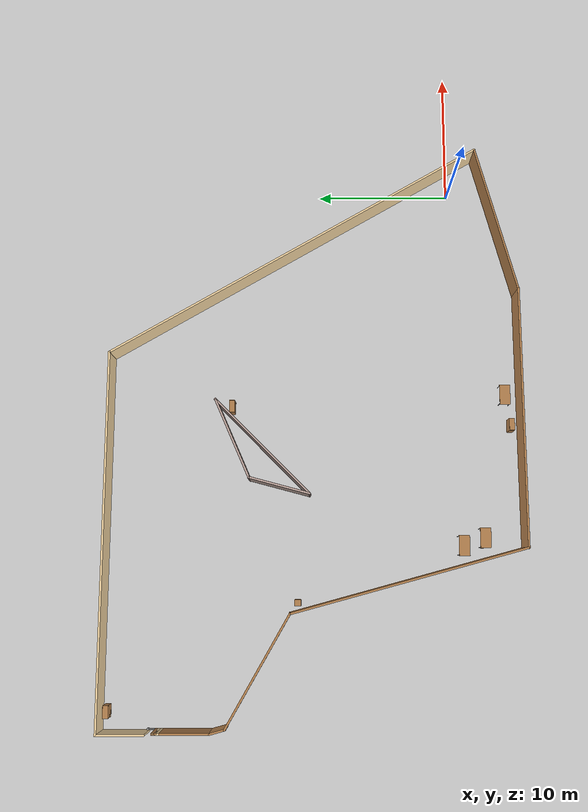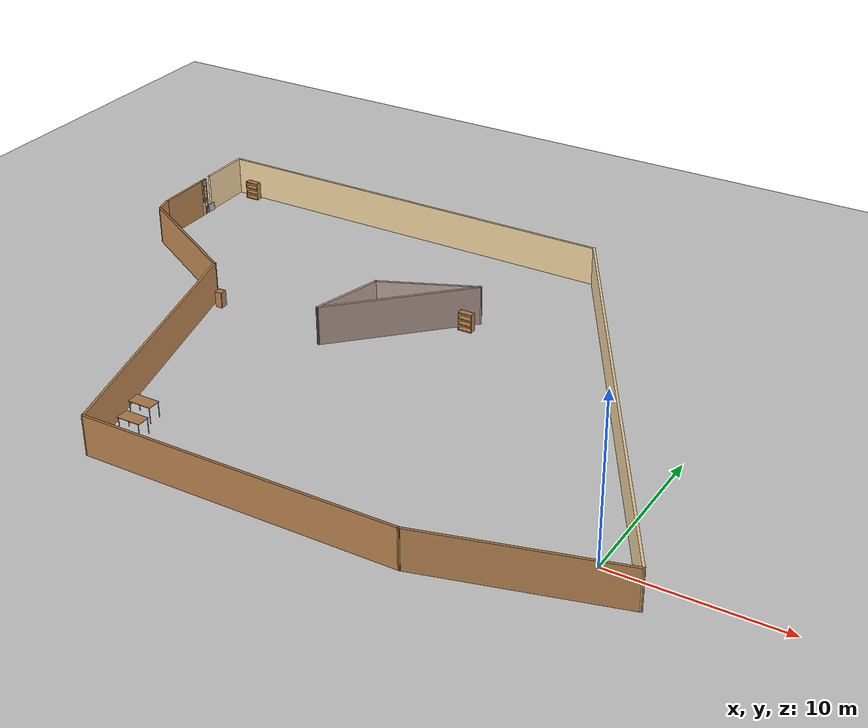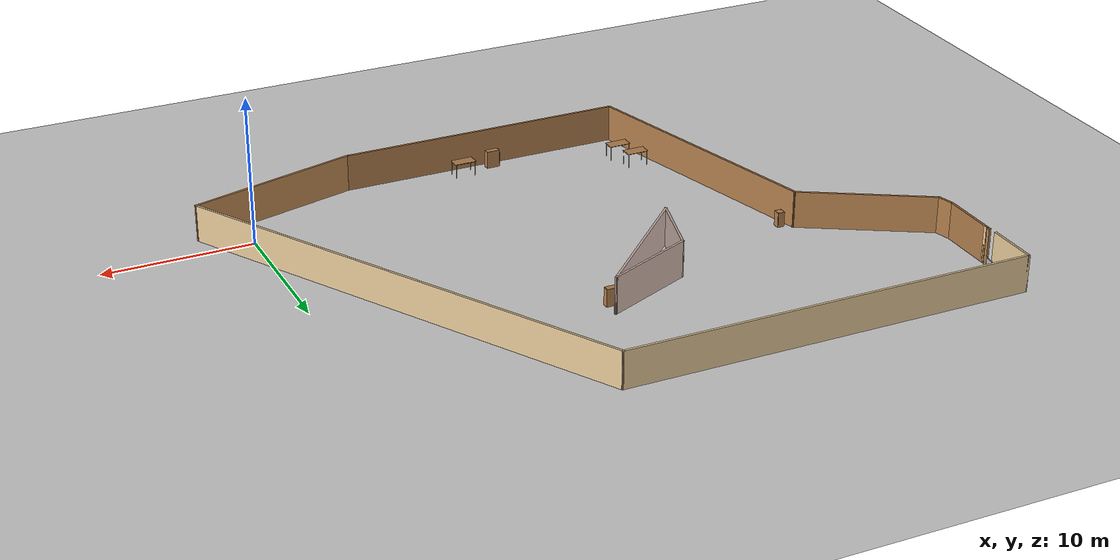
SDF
<sdf version="1.7">
 <world name="default">
  <light name="sun" type="directional">
   <pose>0 0 10 0 -0 0</pose>
   <diffuse>0.8 0.8 0.8 1</diffuse>
   <specular>0.2 0.2 0.2 1</specular>
   <attenuation>
    <range>1000</range>
    <constant>0.9</constant>
    <linear>0.01</linear>
    <quadratic>0.001</quadratic>
   </attenuation>
   <direction>-0.5 0.1 -0.9</direction>
   <spot><inner_angle>0</inner_angle><outer_angle>0</outer_angle><falloff>0</falloff></spot>
  </light>
  <model name="ground_plane">
   <static>1</static>
   <link name="link">
    <collision name="collision">
     <geometry><plane><normal>0 0 1</normal><size>100 100</size></plane></geometry>
     <surface>
      <contact><collide_bitmask>65535</collide_bitmask></contact>
      <friction><ode><mu>100</mu><mu2>50</mu2></ode></friction>
     </surface>
    </collision>
    <visual name="visual">
     <cast_shadows>0</cast_shadows>
     <geometry><plane><normal>0 0 1</normal><size>100 100</size></plane></geometry>
     <material>
      <script><uri>file://media/materials/scripts/gazebo.material</uri><name>Gazebo/Grey</name></script>
     </material>
    </visual>
   </link>
  </model>
  <physics type="ode">
   <real_time_update_rate>1000</real_time_update_rate>
   <max_step_size>0.001</max_step_size>
   <real_time_factor>1</real_time_factor>
   <ode>
    <solver>
     <type>quick</type>
     <iters>150</iters>
     <precon_iters>0</precon_iters>
     <sor>1.4</sor>
     <use_dynamic_moi_rescaling>1</use_dynamic_moi_rescaling>
    </solver>
    <constraints>
     <cfm>1e-05</cfm>
     <erp>0.2</erp>
     <contact_max_correcting_vel>2000</contact_max_correcting_vel>
     <contact_surface_layer>0.01</contact_surface_layer>
    </constraints>
   </ode>
  </physics>
  <scene><ambient>0.4 0.4 0.4 1</ambient><background>0.7 0.7 0.7 1</background><shadows>0</shadows></scene>
  <gravity>0 0 -9.8</gravity>
  <magnetic_field>6e-06 2.3e-05 -4.2e-05</magnetic_field>
  <atmosphere type="adiabatic"/>
  <spherical_coordinates>
   <surface_model>EARTH_WGS84</surface_model>
   <latitude_deg>0</latitude_deg>
   <longitude_deg>0</longitude_deg>
   <elevation>0</elevation>
   <heading_deg>0</heading_deg>
  </spherical_coordinates>
  <model name="pigeonHead-shaped-room">
   <pose>-18.609 10.4209 0 0 -0 0</pose>
   <link name="Wall_0">
    <collision name="Wall_0_Collision">
     <geometry><box><size>3.5 0.15 2.5</size></box></geometry>
     <pose>0 0 1.25 0 -0 0</pose>
    </collision>
    <visual name="Wall_0_Visual">
     <pose>0 0 1.25 0 -0 0</pose>
     <geometry><box><size>3.5 0.15 2.5</size></box></geometry>
     <material>
      <script><uri>file://media/materials/scripts/gazebo.material</uri><name>Gazebo/Grey</name></script>
      <ambient>0.921569 0.807843 0.615686 1</ambient>
     </material>
     <meta><layer>0</layer></meta>
    </visual>
    <pose>-21.7137 13.7206 0 0 -0 1.5708</pose>
   </link>
   <link name="Wall_1">
    <collision name="Wall_1_Collision">
     <geometry><box><size>27.5 0.15 2.5</size></box></geometry>
     <pose>0 0 1.25 0 -0 0</pose>
    </collision>
    <visual name="Wall_1_Visual">
     <pose>0 0 1.25 0 -0 0</pose>
     <geometry><box><size>27.5 0.15 2.5</size></box></geometry>
     <material>
      <script><uri>file://media/materials/scripts/gazebo.material</uri><name>Gazebo/Grey</name></script>
      <ambient>0.921569 0.807843 0.615686 1</ambient>
     </material>
     <meta><layer>0</layer></meta>
    </visual>
    <pose>-8.03873 15.3956 0 0 -0 0</pose>
   </link>
   <link name="Wall_10">
    <collision name="Wall_10_Collision">
     <geometry><box><size>0.25 0.15 2.5</size></box></geometry>
     <pose>0 0 1.25 0 -0 0</pose>
    </collision>
    <visual name="Wall_10_Visual">
     <pose>0 0 1.25 0 -0 0</pose>
     <geometry><box><size>0.25 0.15 2.5</size></box></geometry>
     <material>
      <script><uri>file://media/materials/scripts/gazebo.material</uri><name>Gazebo/Wood</name></script>
      <ambient>0.921569 0.807843 0.615686 1</ambient>
     </material>
     <meta><layer>0</layer></meta>
    </visual>
    <pose>-21.6539 11.1981 0 0 -0 1.5708</pose>
   </link>
   <link name="Wall_11">
    <collision name="Wall_11_Collision">
     <geometry><box><size>0.25 0.15 2.5</size></box></geometry>
     <pose>0 0 1.25 0 -0 0</pose>
    </collision>
    <visual name="Wall_11_Visual">
     <pose>0 0 1.25 0 -0 0</pose>
     <geometry><box><size>0.25 0.15 2.5</size></box></geometry>
     <material>
      <script><uri>file://media/materials/scripts/gazebo.material</uri><name>Gazebo/Grey</name></script>
      <ambient>0.921569 0.807843 0.615686 1</ambient>
     </material>
     <meta><layer>0</layer></meta>
    </visual>
    <pose>-21.6539 11.2981 0 0 -0 1.5708</pose>
   </link>
   <link name="Wall_12">
    <collision name="Wall_12_Collision">
     <geometry><box><size>0.25 0.15 2.5</size></box></geometry>
     <pose>0 0 1.25 0 -0 0</pose>
    </collision>
    <visual name="Wall_12_Visual">
     <pose>0 0 1.25 0 -0 0</pose>
     <geometry><box><size>0.25 0.15 2.5</size></box></geometry>
     <material>
      <script><uri>file://media/materials/scripts/gazebo.material</uri><name>Gazebo/Wood</name></script>
      <ambient>0.921569 0.807843 0.615686 1</ambient>
     </material>
     <meta><layer>0</layer></meta>
    </visual>
    <pose>-21.6539 11.3981 0 0 -0 1.5708</pose>
   </link>
   <link name="Wall_14">
    <collision name="Wall_14_Collision">
     <geometry><box><size>4.75 0.15 2.5</size></box></geometry>
     <pose>0 0 1.25 0 -0 0</pose>
    </collision>
    <visual name="Wall_14_Visual">
     <pose>0 0 1.25 0 -0 0</pose>
     <geometry><box><size>4.75 0.15 2.5</size></box></geometry>
     <material>
      <script><uri>file://media/materials/scripts/gazebo.material</uri><name>Gazebo/Grey</name></script>
      <ambient>0.760784 0.662745 0.627451 1</ambient>
     </material>
     <meta><layer>0</layer></meta>
    </visual>
    <pose>-4.33739 2.65717 0 0 -0 -1.8326</pose>
   </link>
   <link name="Wall_15">
    <collision name="Wall_15_Collision">
     <geometry><box><size>10 0.15 2.5</size></box></geometry>
     <pose>0 0 1.25 0 -0 0</pose>
    </collision>
    <visual name="Wall_15_Visual">
     <pose>0 0 1.25 0 -0 0</pose>
     <geometry><box><size>10 0.15 2.5</size></box></geometry>
     <material>
      <script><uri>file://media/materials/scripts/gazebo.material</uri><name>Gazebo/Grey</name></script>
      <ambient>0.760784 0.662745 0.627451 1</ambient>
     </material>
     <meta><layer>0</layer></meta>
    </visual>
    <pose>-1.45017 3.91805 0 0 -0 0.785398</pose>
   </link>
   <link name="Wall_16">
    <collision name="Wall_16_Collision">
     <geometry><box><size>6.45105 0.15 2.5</size></box></geometry>
     <pose>0 0 1.25 0 -0 0</pose>
    </collision>
    <visual name="Wall_16_Visual">
     <pose>0 0 1.25 0 -0 0</pose>
     <geometry><box><size>6.45105 0.15 2.5</size></box></geometry>
     <material>
      <script><uri>file://media/materials/scripts/gazebo.material</uri><name>Gazebo/Grey</name></script>
      <ambient>0.760784 0.662745 0.627451 1</ambient>
     </material>
     <meta><layer>0</layer></meta>
    </visual>
    <pose>-0.854887 6.13968 0 0 -0 -2.72985</pose>
   </link>
   <link name="Wall_2">
    <collision name="Wall_2_Collision">
     <geometry><box><size>32.25 0.15 2.5</size></box></geometry>
     <pose>0 0 1.25 0 -0 0</pose>
    </collision>
    <visual name="Wall_2_Visual">
     <pose>0 0 1.25 0 -0 0</pose>
     <geometry><box><size>32.25 0.15 2.5</size></box></geometry>
     <material>
      <script><uri>file://media/materials/scripts/gazebo.material</uri><name>Gazebo/Grey</name></script>
      <ambient>0.921569 0.807843 0.615686 1</ambient>
     </material>
     <meta><layer>0</layer></meta>
    </visual>
    <pose>13.6613 1.49585 0 0 -0 -1.0472</pose>
   </link>
   <link name="Wall_3">
    <collision name="Wall_3_Collision">
     <geometry><box><size>11.75 0.15 2.5</size></box></geometry>
     <pose>0 0 1.25 0 -0 0</pose>
    </collision>
    <visual name="Wall_3_Visual">
     <pose>0 0 1.25 0 -0 0</pose>
     <geometry><box><size>11.75 0.15 2.5</size></box></geometry>
     <material>
      <script><uri>file://media/materials/scripts/gazebo.material</uri><name>Gazebo/Wood</name></script>
      <ambient>0.921569 0.807843 0.615686 1</ambient>
     </material>
     <meta><layer>0</layer></meta>
    </visual>
    <pose>16.0839 -13.905 0 0 -0 -2.87979</pose>
   </link>
   <link name="Wall_4">
    <collision name="Wall_4_Collision">
     <geometry><box><size>19.5 0.15 2.5</size></box></geometry>
     <pose>0 0 1.25 0 -0 0</pose>
    </collision>
    <visual name="Wall_4_Visual">
     <pose>0 0 1.25 0 -0 0</pose>
     <geometry><box><size>19.5 0.15 2.5</size></box></geometry>
     <material>
      <script><uri>file://media/materials/scripts/gazebo.material</uri><name>Gazebo/Wood</name></script>
      <ambient>0.921569 0.807843 0.615686 1</ambient>
     </material>
     <meta><layer>0</layer></meta>
    </visual>
    <pose>0.806534 -15.4062 0 0 -0 3.14159</pose>
   </link>
   <link name="Wall_5">
    <collision name="Wall_5_Collision">
     <geometry><box><size>18 0.15 2.5</size></box></geometry>
     <pose>0 0 1.25 0 -0 0</pose>
    </collision>
    <visual name="Wall_5_Visual">
     <pose>0 0 1.25 0 -0 0</pose>
     <geometry><box><size>18 0.15 2.5</size></box></geometry>
     <material>
      <script><uri>file://media/materials/scripts/gazebo.material</uri><name>Gazebo/Wood</name></script>
      <ambient>0.921569 0.807843 0.615686 1</ambient>
     </material>
     <meta><layer>0</layer></meta>
    </visual>
    <pose>-11.1784 -6.78527 0 0 -0 1.8326</pose>
   </link>
   <link name="Wall_6">
    <collision name="Wall_6_Collision">
     <geometry><box><size>9.25 0.15 2.5</size></box></geometry>
     <pose>0 0 1.25 0 -0 0</pose>
    </collision>
    <visual name="Wall_6_Visual">
     <pose>0 0 1.25 0 -0 0</pose>
     <geometry><box><size>9.25 0.15 2.5</size></box></geometry>
     <material>
      <script><uri>file://media/materials/scripts/gazebo.material</uri><name>Gazebo/Wood</name></script>
      <ambient>0.921569 0.807843 0.615686 1</ambient>
     </material>
     <meta><layer>0</layer></meta>
    </visual>
    <pose>-17.4288 4.11062 0 0 -0 2.61799</pose>
   </link>
   <link name="Wall_7">
    <collision name="Wall_7_Collision">
     <geometry><box><size>1.25 0.15 2.5</size></box></geometry>
     <pose>0 0 1.25 0 -0 0</pose>
    </collision>
    <visual name="Wall_7_Visual">
     <pose>0 0 1.25 0 -0 0</pose>
     <geometry><box><size>1.25 0.15 2.5</size></box></geometry>
     <material>
      <script><uri>file://media/materials/scripts/gazebo.material</uri><name>Gazebo/Wood</name></script>
      <ambient>0.921569 0.807843 0.615686 1</ambient>
     </material>
     <meta><layer>0</layer></meta>
    </visual>
    <pose>-21.5116 6.91688 0 0 -0 1.8326</pose>
   </link>
   <link name="Wall_8">
    <collision name="Wall_8_Collision">
     <geometry><box><size>3.75 0.15 2.5</size></box></geometry>
     <pose>0 0 1.25 0 -0 0</pose>
    </collision>
    <visual name="Wall_8_Visual">
     <pose>0 0 1.25 0 -0 0</pose>
     <geometry><box><size>3.75 0.15 2.5</size></box></geometry>
     <material>
      <script><uri>file://media/materials/scripts/gazebo.material</uri><name>Gazebo/Wood</name></script>
      <ambient>0.921569 0.807843 0.615686 1</ambient>
     </material>
     <meta><layer>0</layer></meta>
    </visual>
    <pose>-21.6539 9.24814 0 0 -0 1.5708</pose>
   </link>
   <link name="Wall_9">
    <collision name="Wall_9_Collision">
     <geometry><box><size>0.25 0.15 2.5</size></box></geometry>
     <pose>0 0 1.25 0 -0 0</pose>
    </collision>
    <visual name="Wall_9_Visual">
     <pose>0 0 1.25 0 -0 0</pose>
     <geometry><box><size>0.25 0.15 2.5</size></box></geometry>
     <material>
      <script><uri>file://media/materials/scripts/gazebo.material</uri><name>Gazebo/Grey</name></script>
      <ambient>0.921569 0.807843 0.615686 1</ambient>
     </material>
     <meta><layer>0</layer></meta>
    </visual>
    <pose>-21.6539 11.0981 0 0 -0 1.5708</pose>
   </link>
   <static>1</static>
  </model>
  <model name="door-model">
   <link name="door">
    <inertial>
     <mass>20</mass>
     <inertia>
      <ixx>4.53808</ixx>
      <ixy>0</ixy>
      <ixz>0</ixz>
      <iyy>4.54003</iyy>
      <iyz>0</iyz>
      <izz>0.0512722</izz>
     </inertia>
    </inertial>
    <gravity>0</gravity>
    <visual name="visual">
     <geometry><mesh><uri>model://door-model/./Door.dae</uri><scale>0.001 0.001 0.001</scale></mesh></geometry>
    </visual>
    <collision name="collision">
     <geometry><mesh><uri>model://door-model/./Door.dae</uri><scale>0.001 0.001 0.001</scale></mesh></geometry>
     <surface>
      <friction>
       <ode><mu>1</mu><mu2>1</mu2><fdir1>0 0 0</fdir1><slip1>0</slip1><slip2>0</slip2></ode>
       <torsional>
        <coefficient>1</coefficient>
        <patch_radius>0</patch_radius>
        <surface_radius>0</surface_radius>
        <use_patch_radius>1</use_patch_radius>
        <ode><slip>0</slip></ode>
       </torsional>
      </friction>
      <bounce><restitution_coefficient>0</restitution_coefficient><threshold>1e+06</threshold></bounce>
      <contact>
       <collide_without_contact>0</collide_without_contact>
       <collide_without_contact_bitmask>1</collide_without_contact_bitmask>
       <collide_bitmask>1</collide_bitmask>
       <ode>
        <soft_cfm>0</soft_cfm>
        <soft_erp>0.2</soft_erp>
        <kp>1e+13</kp>
        <kd>1</kd>
        <max_vel>0.01</max_vel>
        <min_depth>0</min_depth>
       </ode>
       <bullet>
        <split_impulse>1</split_impulse>
        <split_impulse_penetration_threshold>-0.01</split_impulse_penetration_threshold>
        <soft_cfm>0</soft_cfm>
        <soft_erp>0.2</soft_erp>
        <kp>1e+13</kp>
        <kd>1</kd>
       </bullet>
      </contact>
     </surface>
    </collision>
   </link>
   <link name="pole">
    <inertial>
     <mass>100</mass>
     <inertia>
      <ixx>0.001</ixx>
      <ixy>0.001</ixy>
      <ixz>0.001</ixz>
      <iyy>0.001</iyy>
      <iyz>0.001</iyz>
      <izz>0.001</izz>
     </inertia>
    </inertial>
    <pose>-0.02632 0 0.308096 0 -0 0</pose>
    <gravity>0</gravity>
    <kinematic>1</kinematic>
    <visual name="visual">
     <geometry><box><size>0.048276 0.0462 0.625074</size></box></geometry>
     <material>
      <lighting>1</lighting>
      <script><uri>file://media/materials/scripts/gazebo.material</uri><name>Gazebo/White</name></script>
      <ambient>1 1 1 1</ambient>
     </material>
    </visual>
    <collision name="collision">
     <geometry><box><size>0.048 0.046201 0.625074</size></box></geometry>
     <surface>
      <friction>
       <ode><mu>1</mu><mu2>1</mu2><fdir1>0 0 0</fdir1><slip1>0</slip1><slip2>0</slip2></ode>
       <torsional>
        <coefficient>1</coefficient>
        <patch_radius>0</patch_radius>
        <surface_radius>0</surface_radius>
        <use_patch_radius>1</use_patch_radius>
        <ode><slip>0</slip></ode>
       </torsional>
      </friction>
      <bounce><restitution_coefficient>0</restitution_coefficient><threshold>1e+06</threshold></bounce>
      <contact>
       <collide_without_contact>0</collide_without_contact>
       <collide_without_contact_bitmask>1</collide_without_contact_bitmask>
       <collide_bitmask>1</collide_bitmask>
       <ode>
        <soft_cfm>0</soft_cfm>
        <soft_erp>0.2</soft_erp>
        <kp>1e+13</kp>
        <kd>1</kd>
        <max_vel>0.01</max_vel>
        <min_depth>0</min_depth>
       </ode>
       <bullet>
        <split_impulse>1</split_impulse>
        <split_impulse_penetration_threshold>-0.01</split_impulse_penetration_threshold>
        <soft_cfm>0</soft_cfm>
        <soft_erp>0.2</soft_erp>
        <kp>1e+13</kp>
        <kd>1</kd>
       </bullet>
      </contact>
     </surface>
    </collision>
   </link>
   <joint name="hinge" type="revolute">
    <parent>pole</parent>
    <child>door</child>
    <pose>0 0 0.3 0 -0 0</pose>
    <axis>
     <xyz>0 0 1</xyz>
     <limit><lower>-1.74533</lower><upper>1.74533</upper><effort>3900</effort><velocity>0.62</velocity></limit>
     <dynamics>
      <spring_reference>0</spring_reference>
      <spring_stiffness>0</spring_stiffness>
      <damping>0.1</damping>
      <friction>0.1</friction>
     </dynamics>
    </axis>
    <physics>
     <ode><limit><cfm>0</cfm><erp>0.2</erp></limit><suspension><cfm>0</cfm><erp>0.2</erp></suspension></ode>
    </physics>
   </joint>
   <static>0</static>
   <pose>-40.1991 21.9984 -0 0 -0 1.51619</pose>
  </model>
  <model name="bookshelf">
   <static>1</static>
   <link name="link">
    <inertial><mass>1</mass></inertial>
    <collision name="back">
     <pose>0 0.005 0.6 0 -0 0</pose>
     <geometry><box><size>0.9 0.01 1.2</size></box></geometry>
    </collision>
    <visual name="visual1">
     <pose>0 0.005 0.6 0 -0 0</pose>
     <geometry><box><size>0.9 0.01 1.2</size></box></geometry>
     <material>
      <script><uri>file://media/materials/scripts/gazebo.material</uri><name>Gazebo/Wood</name></script>
     </material>
    </visual>
    <collision name="left_side">
     <pose>0.45 -0.195 0.6 0 -0 0</pose>
     <geometry><box><size>0.02 0.4 1.2</size></box></geometry>
    </collision>
    <visual name="visual2">
     <pose>0.45 -0.195 0.6 0 -0 0</pose>
     <geometry><box><size>0.02 0.4 1.2</size></box></geometry>
     <material>
      <script><uri>file://media/materials/scripts/gazebo.material</uri><name>Gazebo/Wood</name></script>
     </material>
    </visual>
    <collision name="right_side">
     <pose>-0.45 -0.195 0.6 0 -0 0</pose>
     <geometry><box><size>0.02 0.4 1.2</size></box></geometry>
    </collision>
    <visual name="visual3">
     <pose>-0.45 -0.195 0.6 0 -0 0</pose>
     <geometry><box><size>0.02 0.4 1.2</size></box></geometry>
     <material>
      <script><uri>file://media/materials/scripts/gazebo.material</uri><name>Gazebo/Wood</name></script>
     </material>
    </visual>
    <collision name="bottom">
     <pose>0 -0.195 0.03 0 -0 0</pose>
     <geometry><box><size>0.88 0.4 0.06</size></box></geometry>
    </collision>
    <visual name="visual4">
     <pose>0 -0.195 0.03 0 -0 0</pose>
     <geometry><box><size>0.88 0.4 0.06</size></box></geometry>
     <material>
      <script><uri>file://media/materials/scripts/gazebo.material</uri><name>Gazebo/Wood</name></script>
     </material>
    </visual>
    <collision name="top">
     <pose>0 -0.195 1.19 0 -0 0</pose>
     <geometry><box><size>0.88 0.4 0.02</size></box></geometry>
    </collision>
    <visual name="visual5">
     <pose>0 -0.195 1.19 0 -0 0</pose>
     <geometry><box><size>0.88 0.4 0.02</size></box></geometry>
     <material>
      <script><uri>file://media/materials/scripts/gazebo.material</uri><name>Gazebo/Wood</name></script>
     </material>
    </visual>
    <collision name="low_shelf">
     <pose>0 -0.195 0.43 0 -0 0</pose>
     <geometry><box><size>0.88 0.4 0.02</size></box></geometry>
    </collision>
    <visual name="visual6">
     <pose>0 -0.195 0.43 0 -0 0</pose>
     <geometry><box><size>0.88 0.4 0.02</size></box></geometry>
     <material>
      <script><uri>file://media/materials/scripts/gazebo.material</uri><name>Gazebo/Wood</name></script>
     </material>
    </visual>
    <collision name="high_shelf">
     <pose>0 -0.195 0.8 0 -0 0</pose>
     <geometry><box><size>0.88 0.4 0.02</size></box></geometry>
    </collision>
    <visual name="visual7">
     <pose>0 -0.195 0.8 0 -0 0</pose>
     <geometry><box><size>0.88 0.4 0.02</size></box></geometry>
     <material>
      <script><uri>file://media/materials/scripts/gazebo.material</uri><name>Gazebo/Wood</name></script>
     </material>
    </visual>
   </link>
   <pose>-38.9189 25.6071 0 0 -0 0</pose>
  </model>
  <model name="table">
   <static>1</static>
   <link name="link">
    <collision name="surface">
     <pose>0 0 1 0 -0 0</pose>
     <geometry><box><size>1.5 0.8 0.03</size></box></geometry>
     <surface><friction><ode><mu>0.6</mu><mu2>0.6</mu2></ode></friction></surface>
    </collision>
    <visual name="visual1">
     <pose>0 0 1 0 -0 0</pose>
     <geometry><box><size>1.5 0.8 0.03</size></box></geometry>
     <material>
      <script><uri>file://media/materials/scripts/gazebo.material</uri><name>Gazebo/Wood</name></script>
     </material>
    </visual>
    <collision name="front_left_leg">
     <pose>0.68 0.38 0.5 0 -0 0</pose>
     <geometry><cylinder><radius>0.02</radius><length>1</length></cylinder></geometry>
    </collision>
    <visual name="front_left_leg">
     <pose>0.68 0.38 0.5 0 -0 0</pose>
     <geometry><cylinder><radius>0.02</radius><length>1</length></cylinder></geometry>
     <material>
      <script><uri>file://media/materials/scripts/gazebo.material</uri><name>Gazebo/Grey</name></script>
     </material>
    </visual>
    <collision name="front_right_leg">
     <pose>0.68 -0.38 0.5 0 -0 0</pose>
     <geometry><cylinder><radius>0.02</radius><length>1</length></cylinder></geometry>
    </collision>
    <visual name="front_right_leg">
     <pose>0.68 -0.38 0.5 0 -0 0</pose>
     <geometry><cylinder><radius>0.02</radius><length>1</length></cylinder></geometry>
     <material>
      <script><uri>file://media/materials/scripts/gazebo.material</uri><name>Gazebo/Grey</name></script>
     </material>
    </visual>
    <collision name="back_right_leg">
     <pose>-0.68 -0.38 0.5 0 -0 0</pose>
     <geometry><cylinder><radius>0.02</radius><length>1</length></cylinder></geometry>
    </collision>
    <visual name="back_right_leg">
     <pose>-0.68 -0.38 0.5 0 -0 0</pose>
     <geometry><cylinder><radius>0.02</radius><length>1</length></cylinder></geometry>
     <material>
      <script><uri>file://media/materials/scripts/gazebo.material</uri><name>Gazebo/Grey</name></script>
     </material>
    </visual>
    <collision name="back_left_leg">
     <pose>-0.68 0.38 0.5 0 -0 0</pose>
     <geometry><cylinder><radius>0.02</radius><length>1</length></cylinder></geometry>
    </collision>
    <visual name="back_left_leg">
     <pose>-0.68 0.38 0.5 0 -0 0</pose>
     <geometry><cylinder><radius>0.02</radius><length>1</length></cylinder></geometry>
     <material>
      <script><uri>file://media/materials/scripts/gazebo.material</uri><name>Gazebo/Grey</name></script>
     </material>
    </visual>
   </link>
   <pose>-26.7162 -2.12443 0 0 -0 0</pose>
  </model>
  <model name="table_0">
   <static>1</static>
   <link name="link">
    <collision name="surface">
     <pose>0 0 1 0 -0 0</pose>
     <geometry><box><size>1.5 0.8 0.03</size></box></geometry>
     <surface><friction><ode><mu>0.6</mu><mu2>0.6</mu2></ode></friction></surface>
    </collision>
    <visual name="visual1">
     <pose>0 0 1 0 -0 0</pose>
     <geometry><box><size>1.5 0.8 0.03</size></box></geometry>
     <material>
      <script><uri>file://media/materials/scripts/gazebo.material</uri><name>Gazebo/Wood</name></script>
     </material>
    </visual>
    <collision name="front_left_leg">
     <pose>0.68 0.38 0.5 0 -0 0</pose>
     <geometry><cylinder><radius>0.02</radius><length>1</length></cylinder></geometry>
    </collision>
    <visual name="front_left_leg">
     <pose>0.68 0.38 0.5 0 -0 0</pose>
     <geometry><cylinder><radius>0.02</radius><length>1</length></cylinder></geometry>
     <material>
      <script><uri>file://media/materials/scripts/gazebo.material</uri><name>Gazebo/Grey</name></script>
     </material>
    </visual>
    <collision name="front_right_leg">
     <pose>0.68 -0.38 0.5 0 -0 0</pose>
     <geometry><cylinder><radius>0.02</radius><length>1</length></cylinder></geometry>
    </collision>
    <visual name="front_right_leg">
     <pose>0.68 -0.38 0.5 0 -0 0</pose>
     <geometry><cylinder><radius>0.02</radius><length>1</length></cylinder></geometry>
     <material>
      <script><uri>file://media/materials/scripts/gazebo.material</uri><name>Gazebo/Grey</name></script>
     </material>
    </visual>
    <collision name="back_right_leg">
     <pose>-0.68 -0.38 0.5 0 -0 0</pose>
     <geometry><cylinder><radius>0.02</radius><length>1</length></cylinder></geometry>
    </collision>
    <visual name="back_right_leg">
     <pose>-0.68 -0.38 0.5 0 -0 0</pose>
     <geometry><cylinder><radius>0.02</radius><length>1</length></cylinder></geometry>
     <material>
      <script><uri>file://media/materials/scripts/gazebo.material</uri><name>Gazebo/Grey</name></script>
     </material>
    </visual>
    <collision name="back_left_leg">
     <pose>-0.68 0.38 0.5 0 -0 0</pose>
     <geometry><cylinder><radius>0.02</radius><length>1</length></cylinder></geometry>
    </collision>
    <visual name="back_left_leg">
     <pose>-0.68 0.38 0.5 0 -0 0</pose>
     <geometry><cylinder><radius>0.02</radius><length>1</length></cylinder></geometry>
     <material>
      <script><uri>file://media/materials/scripts/gazebo.material</uri><name>Gazebo/Grey</name></script>
     </material>
    </visual>
   </link>
   <pose>-27.2683 -0.541935 0 0 -0 0</pose>
  </model>
  <model name="bookshelf_0">
   <static>1</static>
   <link name="link">
    <inertial><mass>1</mass></inertial>
    <collision name="back">
     <pose>0 0.005 0.6 0 -0 0</pose>
     <geometry><box><size>0.9 0.01 1.2</size></box></geometry>
    </collision>
    <visual name="visual1">
     <pose>0 0.005 0.6 0 -0 0</pose>
     <geometry><box><size>0.9 0.01 1.2</size></box></geometry>
     <material>
      <script><uri>file://media/materials/scripts/gazebo.material</uri><name>Gazebo/Wood</name></script>
     </material>
    </visual>
    <collision name="left_side">
     <pose>0.45 -0.195 0.6 0 -0 0</pose>
     <geometry><box><size>0.02 0.4 1.2</size></box></geometry>
    </collision>
    <visual name="visual2">
     <pose>0.45 -0.195 0.6 0 -0 0</pose>
     <geometry><box><size>0.02 0.4 1.2</size></box></geometry>
     <material>
      <script><uri>file://media/materials/scripts/gazebo.material</uri><name>Gazebo/Wood</name></script>
     </material>
    </visual>
    <collision name="right_side">
     <pose>-0.45 -0.195 0.6 0 -0 0</pose>
     <geometry><box><size>0.02 0.4 1.2</size></box></geometry>
    </collision>
    <visual name="visual3">
     <pose>-0.45 -0.195 0.6 0 -0 0</pose>
     <geometry><box><size>0.02 0.4 1.2</size></box></geometry>
     <material>
      <script><uri>file://media/materials/scripts/gazebo.material</uri><name>Gazebo/Wood</name></script>
     </material>
    </visual>
    <collision name="bottom">
     <pose>0 -0.195 0.03 0 -0 0</pose>
     <geometry><box><size>0.88 0.4 0.06</size></box></geometry>
    </collision>
    <visual name="visual4">
     <pose>0 -0.195 0.03 0 -0 0</pose>
     <geometry><box><size>0.88 0.4 0.06</size></box></geometry>
     <material>
      <script><uri>file://media/materials/scripts/gazebo.material</uri><name>Gazebo/Wood</name></script>
     </material>
    </visual>
    <collision name="top">
     <pose>0 -0.195 1.19 0 -0 0</pose>
     <geometry><box><size>0.88 0.4 0.02</size></box></geometry>
    </collision>
    <visual name="visual5">
     <pose>0 -0.195 1.19 0 -0 0</pose>
     <geometry><box><size>0.88 0.4 0.02</size></box></geometry>
     <material>
      <script><uri>file://media/materials/scripts/gazebo.material</uri><name>Gazebo/Wood</name></script>
     </material>
    </visual>
    <collision name="low_shelf">
     <pose>0 -0.195 0.43 0 -0 0</pose>
     <geometry><box><size>0.88 0.4 0.02</size></box></geometry>
    </collision>
    <visual name="visual6">
     <pose>0 -0.195 0.43 0 -0 0</pose>
     <geometry><box><size>0.88 0.4 0.02</size></box></geometry>
     <material>
      <script><uri>file://media/materials/scripts/gazebo.material</uri><name>Gazebo/Wood</name></script>
     </material>
    </visual>
    <collision name="high_shelf">
     <pose>0 -0.195 0.8 0 -0 0</pose>
     <geometry><box><size>0.88 0.4 0.02</size></box></geometry>
    </collision>
    <visual name="visual7">
     <pose>0 -0.195 0.8 0 -0 0</pose>
     <geometry><box><size>0.88 0.4 0.02</size></box></geometry>
     <material>
      <script><uri>file://media/materials/scripts/gazebo.material</uri><name>Gazebo/Wood</name></script>
     </material>
    </visual>
   </link>
   <pose>-16.8872 16.8711 0 0 -0 0</pose>
  </model>
  <model name="cabinet">
   <static>1</static>
   <link name="cabinet_bottom_plate">
    <inertial>
     <pose>0 0 -1 0 -0 0</pose>
     <inertia><ixx>2.05</ixx><ixy>0</ixy><ixz>0</ixz><iyy>2.05</iyy><iyz>0</iyz><izz>2.05</izz></inertia>
     <mass>25</mass>
    </inertial>
    <collision name="cabinet_bottom_plate_geom">
     <pose>0 0 0.01 0 -0 0</pose>
     <geometry><box><size>0.45 0.45 0.02</size></box></geometry>
    </collision>
    <visual name="cabinet_bottom_plate_geom_visual">
     <pose>0 0 0.01 0 -0 0</pose>
     <geometry><box><size>0.45 0.45 0.02</size></box></geometry>
     <material>
      <script><uri>file://media/materials/scripts/gazebo.material</uri><name>Gazebo/Wood</name></script>
     </material>
    </visual>
    <collision name="cabinet_bottom_plate_geom_cabinet_back_plate">
     <pose>0.235 0 0.51 0 -0 0</pose>
     <geometry><box><size>0.02 0.45 1.02</size></box></geometry>
    </collision>
    <visual name="cabinet_bottom_plate_geom_cabinet_back_plate_visual">
     <pose>0.235 0 0.51 0 -0 0</pose>
     <geometry><box><size>0.02 0.45 1.02</size></box></geometry>
     <material>
      <script><uri>file://media/materials/scripts/gazebo.material</uri><name>Gazebo/Wood</name></script>
     </material>
    </visual>
    <collision name="cabinet_bottom_plate_geom_cabinet_left_plate">
     <pose>0 0.235 0.51 0 -0 0</pose>
     <geometry><box><size>0.45 0.02 1.02</size></box></geometry>
    </collision>
    <visual name="cabinet_bottom_plate_geom_cabinet_left_plate_visual">
     <pose>0 0.235 0.51 0 -0 0</pose>
     <geometry><box><size>0.45 0.02 1.02</size></box></geometry>
     <material>
      <script><uri>file://media/materials/scripts/gazebo.material</uri><name>Gazebo/Wood</name></script>
     </material>
    </visual>
    <collision name="cabinet_bottom_plate_geom_cabinet_middle_plate">
     <pose>0 0 0.51 0 -0 0</pose>
     <geometry><box><size>0.45 0.45 0.02</size></box></geometry>
    </collision>
    <visual name="cabinet_bottom_plate_geom_cabinet_middle_plate_visual">
     <pose>0 0 0.51 0 -0 0</pose>
     <geometry><box><size>0.45 0.45 0.02</size></box></geometry>
     <material>
      <script><uri>file://media/materials/scripts/gazebo.material</uri><name>Gazebo/Wood</name></script>
     </material>
    </visual>
    <collision name="cabinet_bottom_plate_geom_cabinet_right_plate">
     <pose>0 -0.235 0.51 0 -0 0</pose>
     <geometry><box><size>0.45 0.02 1.02</size></box></geometry>
    </collision>
    <visual name="cabinet_bottom_plate_geom_cabinet_right_plate_visual">
     <pose>0 -0.235 0.51 0 -0 0</pose>
     <geometry><box><size>0.45 0.02 1.02</size></box></geometry>
     <material>
      <script><uri>file://media/materials/scripts/gazebo.material</uri><name>Gazebo/Wood</name></script>
     </material>
    </visual>
    <collision name="cabinet_bottom_plate_geom_cabinet_top_plate">
     <pose>0 0 1.01 0 -0 0</pose>
     <geometry><box><size>0.45 0.45 0.02</size></box></geometry>
    </collision>
    <visual name="cabinet_bottom_plate_geom_cabinet_top_plate_visual">
     <pose>0 0 1.01 0 -0 0</pose>
     <geometry><box><size>0.45 0.45 0.02</size></box></geometry>
     <material>
      <script><uri>file://media/materials/scripts/gazebo.material</uri><name>Gazebo/Wood</name></script>
     </material>
    </visual>
   </link>
   <pose>-31.3778 11.7192 0 0 -0 0</pose>
  </model>
  <model name="table_1">
   <static>1</static>
   <link name="link">
    <collision name="surface">
     <pose>0 0 1 0 -0 0</pose>
     <geometry><box><size>1.5 0.8 0.03</size></box></geometry>
     <surface><friction><ode><mu>0.6</mu><mu2>0.6</mu2></ode></friction></surface>
    </collision>
    <visual name="visual1">
     <pose>0 0 1 0 -0 0</pose>
     <geometry><box><size>1.5 0.8 0.03</size></box></geometry>
     <material>
      <script><uri>file://media/materials/scripts/gazebo.material</uri><name>Gazebo/Wood</name></script>
     </material>
    </visual>
    <collision name="front_left_leg">
     <pose>0.68 0.38 0.5 0 -0 0</pose>
     <geometry><cylinder><radius>0.02</radius><length>1</length></cylinder></geometry>
    </collision>
    <visual name="front_left_leg">
     <pose>0.68 0.38 0.5 0 -0 0</pose>
     <geometry><cylinder><radius>0.02</radius><length>1</length></cylinder></geometry>
     <material>
      <script><uri>file://media/materials/scripts/gazebo.material</uri><name>Gazebo/Grey</name></script>
     </material>
    </visual>
    <collision name="front_right_leg">
     <pose>0.68 -0.38 0.5 0 -0 0</pose>
     <geometry><cylinder><radius>0.02</radius><length>1</length></cylinder></geometry>
    </collision>
    <visual name="front_right_leg">
     <pose>0.68 -0.38 0.5 0 -0 0</pose>
     <geometry><cylinder><radius>0.02</radius><length>1</length></cylinder></geometry>
     <material>
      <script><uri>file://media/materials/scripts/gazebo.material</uri><name>Gazebo/Grey</name></script>
     </material>
    </visual>
    <collision name="back_right_leg">
     <pose>-0.68 -0.38 0.5 0 -0 0</pose>
     <geometry><cylinder><radius>0.02</radius><length>1</length></cylinder></geometry>
    </collision>
    <visual name="back_right_leg">
     <pose>-0.68 -0.38 0.5 0 -0 0</pose>
     <geometry><cylinder><radius>0.02</radius><length>1</length></cylinder></geometry>
     <material>
      <script><uri>file://media/materials/scripts/gazebo.material</uri><name>Gazebo/Grey</name></script>
     </material>
    </visual>
    <collision name="back_left_leg">
     <pose>-0.68 0.38 0.5 0 -0 0</pose>
     <geometry><cylinder><radius>0.02</radius><length>1</length></cylinder></geometry>
    </collision>
    <visual name="back_left_leg">
     <pose>-0.68 0.38 0.5 0 -0 0</pose>
     <geometry><cylinder><radius>0.02</radius><length>1</length></cylinder></geometry>
     <material>
      <script><uri>file://media/materials/scripts/gazebo.material</uri><name>Gazebo/Grey</name></script>
     </material>
    </visual>
   </link>
   <pose>-16.0217 -3.92739 0 0 -0 0</pose>
  </model>
  <model name="bookshelf_1">
   <static>1</static>
   <link name="link">
    <inertial><mass>1</mass></inertial>
    <collision name="back">
     <pose>0 0.005 0.6 0 -0 0</pose>
     <geometry><box><size>0.9 0.01 1.2</size></box></geometry>
    </collision>
    <visual name="visual1">
     <pose>0 0.005 0.6 0 -0 0</pose>
     <geometry><box><size>0.9 0.01 1.2</size></box></geometry>
     <material>
      <script><uri>file://media/materials/scripts/gazebo.material</uri><name>Gazebo/Wood</name></script>
     </material>
    </visual>
    <collision name="left_side">
     <pose>0.45 -0.195 0.6 0 -0 0</pose>
     <geometry><box><size>0.02 0.4 1.2</size></box></geometry>
    </collision>
    <visual name="visual2">
     <pose>0.45 -0.195 0.6 0 -0 0</pose>
     <geometry><box><size>0.02 0.4 1.2</size></box></geometry>
     <material>
      <script><uri>file://media/materials/scripts/gazebo.material</uri><name>Gazebo/Wood</name></script>
     </material>
    </visual>
    <collision name="right_side">
     <pose>-0.45 -0.195 0.6 0 -0 0</pose>
     <geometry><box><size>0.02 0.4 1.2</size></box></geometry>
    </collision>
    <visual name="visual3">
     <pose>-0.45 -0.195 0.6 0 -0 0</pose>
     <geometry><box><size>0.02 0.4 1.2</size></box></geometry>
     <material>
      <script><uri>file://media/materials/scripts/gazebo.material</uri><name>Gazebo/Wood</name></script>
     </material>
    </visual>
    <collision name="bottom">
     <pose>0 -0.195 0.03 0 -0 0</pose>
     <geometry><box><size>0.88 0.4 0.06</size></box></geometry>
    </collision>
    <visual name="visual4">
     <pose>0 -0.195 0.03 0 -0 0</pose>
     <geometry><box><size>0.88 0.4 0.06</size></box></geometry>
     <material>
      <script><uri>file://media/materials/scripts/gazebo.material</uri><name>Gazebo/Wood</name></script>
     </material>
    </visual>
    <collision name="top">
     <pose>0 -0.195 1.19 0 -0 0</pose>
     <geometry><box><size>0.88 0.4 0.02</size></box></geometry>
    </collision>
    <visual name="visual5">
     <pose>0 -0.195 1.19 0 -0 0</pose>
     <geometry><box><size>0.88 0.4 0.02</size></box></geometry>
     <material>
      <script><uri>file://media/materials/scripts/gazebo.material</uri><name>Gazebo/Wood</name></script>
     </material>
    </visual>
    <collision name="low_shelf">
     <pose>0 -0.195 0.43 0 -0 0</pose>
     <geometry><box><size>0.88 0.4 0.02</size></box></geometry>
    </collision>
    <visual name="visual6">
     <pose>0 -0.195 0.43 0 -0 0</pose>
     <geometry><box><size>0.88 0.4 0.02</size></box></geometry>
     <material>
      <script><uri>file://media/materials/scripts/gazebo.material</uri><name>Gazebo/Wood</name></script>
     </material>
    </visual>
    <collision name="high_shelf">
     <pose>0 -0.195 0.8 0 -0 0</pose>
     <geometry><box><size>0.88 0.4 0.02</size></box></geometry>
    </collision>
    <visual name="visual7">
     <pose>0 -0.195 0.8 0 -0 0</pose>
     <geometry><box><size>0.88 0.4 0.02</size></box></geometry>
     <material>
      <script><uri>file://media/materials/scripts/gazebo.material</uri><name>Gazebo/Wood</name></script>
     </material>
    </visual>
   </link>
   <pose>-18.3111 -4.15592 0 0 -0 0</pose>
  </model>
 </world>
</sdf>
